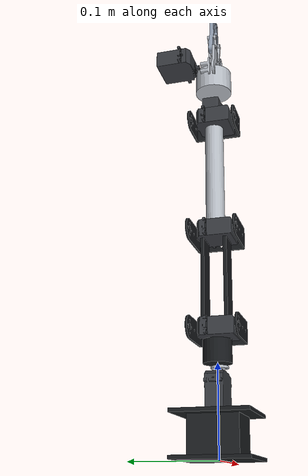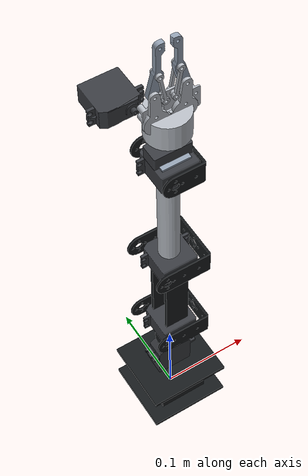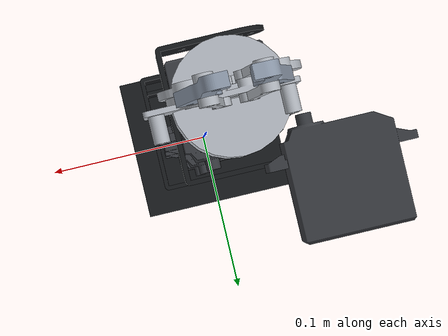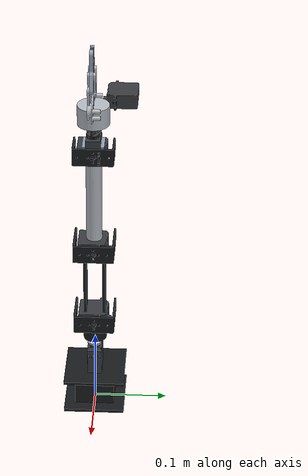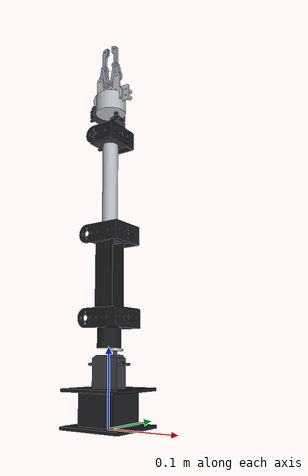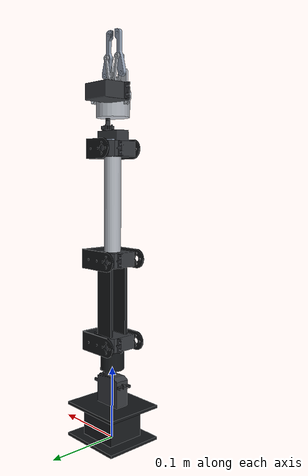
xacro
<?xml version="1.0" encoding="UTF-8"?>
<robot name="k3b_arm" xmlns:xacro="http://www.ros.org/wiki/xacro">

  <!-- 本体：link / joint / 网格，和纯模型版完全一致 -->
  <xacro:include filename="k3b_arm.urdf.xacro"/>

  <!-- 控制接口：只声明 6 个主动关节 -->
  <xacro:include filename="ros2_control/k3b_arm.ros2_control.xacro"/>

</robot>

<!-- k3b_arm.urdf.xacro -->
<robot name="k3b_arm" xmlns:xacro="http://www.ros.org/wiki/xacro">

  <!-- ================= 杆长（按图估算，需实测替换） ================= -->
  <xacro:property name="base_height"   value="0.095"/>
  <xacro:property name="base_radius"   value="0.05"/>
  <xacro:property name="base_plate_x"  value="0.090"/>   <!-- 规格图 9cm -->
  <xacro:property name="base_plate_y"  value="0.084"/>   <!-- 规格图 8.4cm -->
  <xacro:property name="base_box_h"    value="${base_height - s20f_h - 0.008}"/>
  <xacro:property name="upper_arm_len" value="0.105"/>   <!-- 实测 S3→S4 轴心 10.5cm -->
  <xacro:property name="forearm_len"   value="0.145"/>   <!-- 实测 S4→S5 轴心 14.5cm -->
  <xacro:property name="wrist_len"     value="0.040"/>

  <!-- ================= 关节限位（弧度，实测表） ================= -->
  <xacro:property name="lim_base"   value="1.5708"/>
  <xacro:property name="lim_should" value="1.7628"/>
  <xacro:property name="lim_elbow"  value="2.3562"/>
  <xacro:property name="lim_wpitch" value="2.2340"/>
  <xacro:property name="joint_speed" value="1.5"/>

  <xacro:property name="claw_x" value="0.00275"/>   <!-- claw 网格对称面 -->
  <xacro:property name="claw_z" value="0.02770"/>   <!-- claw 网格 -> gripper_base -->

  <!-- G 齿轮轴心 -->
  <xacro:property name="gear_u" value="0.01345"/>
  <xacro:property name="gear_z" value="-0.00230"/>
  <xacro:property name="gear_v" value="0.03000"/>
  <!-- R 平行连杆根部销 -->
  <xacro:property name="bar_u"  value="0.00505"/>
  <xacro:property name="bar_z"  value="0.01840"/>
  <xacro:property name="bar_v"  value="0.00930"/>
  <!-- A 指根销（相对齿轮轴） -->
  <xacro:property name="pa_u"   value="0.00220"/>
  <xacro:property name="pa_z"   value="0.02990"/>
  <xacro:property name="pa_v"   value="0.00010"/>

  <!-- S1：输出轴落在齿轮轴心上，机身向 +Y 外挂 -->
  <xacro:property name="s1_x" value="-0.02348"/>
  <xacro:property name="s1_y" value="0.012"/>

  <!-- 行程：齿轮臂 0~80°。80° 是机构锁死角（内距最大 47.1mm，再大就回缩），
       所以 URDF 允许走满全行程，S1 的实际脉宽子区间由实机标定后再收窄。 -->
  <xacro:property name="lim_gear" value="1.39626"/>
  <!-- 从动件 mimic 系数：按 55° 端点匹配（URDF mimic 只能线性，中段为近似） -->
  <xacro:property name="mimic_finger" value="-1.10533"/>
  <xacro:property name="mimic_bar"    value="0.96141"/>
  <!-- 各杆碰撞盒（粗） -->
  <xacro:property name="finger_half_w" value="0.00845"/>
  <xacro:property name="finger_len" value="0.0593"/>

  <!-- ================= 网格 ================= -->
  <xacro:property name="mesh_dir" value="package://k3b_arm_urdf/meshes/"/>

  <!-- S20F：输出轴 +Z、轴心在原点，机身向 -Z 展 45.92mm -->
  <xacro:property name="s20f_h"    value="0.04592"/>
  <xacro:property name="s20f_xoff" value="0.010"/>
  <!-- DS3120（速度舵机）同上 -->
  <xacro:property name="ds_h"      value="0.0455"/>
  <xacro:property name="ds_xoff"   value="0.010"/>

  <!-- 俯仰关节：把舵机 +Z 轴转到 +Y（机身在 -Y 侧展开） -->
  <xacro:property name="servo_y_rpy" value="-${pi/2} 0 0"/>
  <!-- 舵机沿 +Y 前移，让机身落进 U 支架两片侧板之间 -->
  <xacro:property name="s20f_yoff" value="0.024"/>
  <!-- U 支架：绕 Z 转 90°，两片侧板落到 Y=±28，夹住舵机安装法兰 -->
  <xacro:property name="u_rpy" value="0 0 ${pi/2}"/>

  <!-- ================= 材质 ================= -->
  <material name="base_mat"> <color rgba="0.10 0.11 0.12 1.0"/> </material>
  <material name="bracket_mat"> <color rgba="0.09 0.10 0.11 1.0"/> </material>
  <material name="link_mat"> <color rgba="0.58 0.63 0.70 1.0"/> </material>
  <material name="servo_mat"><color rgba="0.22 0.23 0.25 1.0"/> </material>
  <material name="metal_mat"><color rgba="0.72 0.74 0.77 1.0"/> </material>
  <material name="grip_mat"> <color rgba="0.20 0.65 0.55 1.0"/> </material>

  <!-- ================= 底座 ================= -->
  <link name="base_link">
    <!-- 底板（规格图：9 × 8.4cm 方板，实机为上下双板夹方箱） -->
    <visual>
      <geometry><box size="${base_plate_x} ${base_plate_y} 0.004"/></geometry>
      <origin xyz="0 0 0.002" rpy="0 0 0"/>
      <material name="bracket_mat"/>
    </visual>
    <!-- 中间方箱 -->
    <visual>
      <geometry><box size="0.055 0.055 ${base_box_h}"/></geometry>
      <origin xyz="0 0 ${0.004 + base_box_h/2}" rpy="0 0 0"/>
      <material name="base_mat"/>
    </visual>
    <!-- 顶板 -->
    <visual>
      <geometry><box size="${base_plate_x} ${base_plate_y} 0.004"/></geometry>
      <origin xyz="0 0 ${0.004 + base_box_h + 0.002}" rpy="0 0 0"/>
      <material name="bracket_mat"/>
    </visual>
    <!-- S2：驱动 base_yaw，轴朝上 -->
    <visual>
      <geometry><mesh filename="${mesh_dir}s20f.stl"/></geometry>
      <origin xyz="${s20f_xoff} 0 ${base_height}" rpy="0 0 0"/>
      <material name="servo_mat"/>
    </visual>
    <collision>
      <geometry><cylinder radius="${base_radius}" length="${base_height - s20f_h}"/></geometry>
      <origin xyz="0 0 ${(base_height - s20f_h)/2}" rpy="0 0 0"/>
    </collision>
    <inertial>
      <mass value="1.0"/>
      <inertia ixx="0.01" ixy="0.0" ixz="0.0" iyy="0.01" iyz="0.0" izz="0.01"/>
    </inertial>
  </link>

  <!-- ================= J1 底座偏航（S2） ================= -->
  <link name="base_yaw_link">
    <!-- 25T 舵盘压在 S2 输出轴端，当转台 -->
    <visual>
      <geometry><mesh filename="${mesh_dir}part_horn25t.stl"/></geometry>
      <origin xyz="${s20f_xoff} 0 0.0025" rpy="0 0 0"/>
      <material name="metal_mat"/>
    </visual>
    <!-- 短柱：把 U 支架垫到肩关节高度 -->
    <visual>
      <geometry><cylinder radius="0.016" length="0.026"/></geometry>
      <origin xyz="0 0 0.017" rpy="0 0 0"/>
      <material name="bracket_mat"/>
    </visual>
    <!-- 单轴长U支架：夹住 S3 -->
    <visual>
      <geometry><mesh filename="${mesh_dir}part_u_long.stl"/></geometry>
      <origin xyz="0 0 0.042" rpy="${u_rpy}"/>
      <material name="bracket_mat"/>
    </visual>
    <!-- S3：驱动 shoulder_pitch -->
    <visual>
      <geometry><mesh filename="${mesh_dir}s20f.stl"/></geometry>
      <origin xyz="${s20f_xoff} ${s20f_yoff} 0.042" rpy="${servo_y_rpy}"/>
      <material name="servo_mat"/>
    </visual>
    <collision>
      <geometry><cylinder radius="0.032" length="0.05"/></geometry>
      <origin xyz="0 0 0.025" rpy="0 0 0"/>
    </collision>
    <inertial>
      <mass value="0.3"/>
      <inertia ixx="0.001" ixy="0.0" ixz="0.0" iyy="0.001" iyz="0.0" izz="0.001"/>
    </inertial>
  </link>
  <joint name="base_yaw" type="revolute">
    <parent link="base_link"/>
    <child link="base_yaw_link"/>
    <origin xyz="0 0 ${base_height}" rpy="0 0 0"/>
    <axis xyz="0 0 1"/>
    <limit lower="-${lim_base}" upper="${lim_base}" effort="20.0" velocity="${joint_speed}"/>
    <dynamics damping="0.3" friction="0.15"/>
  </joint>

  <!-- ================= J2 肩俯仰（S3） ================= -->
  <link name="upper_arm_link">
    <!-- 大臂：两片平行黑色侧板（实拍结构） -->
    <visual>
      <geometry><box size="0.026 0.004 ${upper_arm_len}"/></geometry>
      <origin xyz="0 0.013 ${upper_arm_len/2}" rpy="0 0 0"/>
      <material name="bracket_mat"/>
    </visual>
    <visual>
      <geometry><box size="0.026 0.004 ${upper_arm_len}"/></geometry>
      <origin xyz="0 -0.013 ${upper_arm_len/2}" rpy="0 0 0"/>
      <material name="bracket_mat"/>
    </visual>
    <!-- 单轴长U支架：夹住 S4 -->
    <visual>
      <geometry><mesh filename="${mesh_dir}part_u_long.stl"/></geometry>
      <origin xyz="0 0 ${upper_arm_len}" rpy="${u_rpy}"/>
      <material name="bracket_mat"/>
    </visual>
    <!-- S4：驱动 elbow_pitch -->
    <visual>
      <geometry><mesh filename="${mesh_dir}s20f.stl"/></geometry>
      <origin xyz="${s20f_xoff} ${s20f_yoff} ${upper_arm_len}" rpy="${servo_y_rpy}"/>
      <material name="servo_mat"/>
    </visual>
    <collision>
      <geometry><box size="0.030 0.030 ${upper_arm_len}"/></geometry>
      <origin xyz="0 0 ${upper_arm_len/2}" rpy="0 0 0"/>
    </collision>
    <inertial>
      <mass value="0.6"/>
      <inertia ixx="0.002" ixy="0.0" ixz="0.0" iyy="0.002" iyz="0.0" izz="0.002"/>
    </inertial>
  </link>
  <joint name="shoulder_pitch" type="revolute">
    <parent link="base_yaw_link"/>
    <child link="upper_arm_link"/>
    <origin xyz="0 0 0.05" rpy="0 0 0"/>
    <axis xyz="0 1 0"/>
    <limit lower="-${lim_should}" upper="${lim_should}" effort="20.0" velocity="${joint_speed}"/>
    <dynamics damping="0.3" friction="0.15"/>
  </joint>

  <!-- ================= J3 肘俯仰（S4） ================= -->
  <link name="forearm_link">
    <!-- 前臂：银色铝管 -->
    <visual>
      <geometry><cylinder radius="0.011" length="${forearm_len}"/></geometry>
      <origin xyz="0 0 ${forearm_len/2}" rpy="0 0 0"/>
      <material name="metal_mat"/>
    </visual>
    <!-- 单轴短U支架：夹住 S5 -->
    <visual>
      <geometry><mesh filename="${mesh_dir}part_u_short.stl"/></geometry>
      <origin xyz="0 0 ${forearm_len}" rpy="${u_rpy}"/>
      <material name="bracket_mat"/>
    </visual>
    <!-- S5（PM15S，暂以 S20F 代替）：驱动 wrist_pitch -->
    <visual>
      <geometry><mesh filename="${mesh_dir}s20f.stl"/></geometry>
      <origin xyz="${s20f_xoff} ${s20f_yoff} ${forearm_len}" rpy="${servo_y_rpy}"/>
      <material name="servo_mat"/>
    </visual>
    <collision>
      <geometry><cylinder radius="0.011" length="${forearm_len}"/></geometry>
      <origin xyz="0 0 ${forearm_len/2}" rpy="0 0 0"/>
    </collision>
    <inertial>
      <mass value="0.5"/>
      <inertia ixx="0.002" ixy="0.0" ixz="0.0" iyy="0.002" iyz="0.0" izz="0.002"/>
    </inertial>
  </link>
  <joint name="elbow_pitch" type="revolute">
    <parent link="upper_arm_link"/>
    <child link="forearm_link"/>
    <origin xyz="0 0 ${upper_arm_len}" rpy="0 0 0"/>
    <axis xyz="0 1 0"/>
    <limit lower="-${lim_elbow}" upper="${lim_elbow}" effort="15.0" velocity="${joint_speed}"/>
    <dynamics damping="0.25" friction="0.12"/>
  </joint>

  <!-- ================= J4 腕俯仰（S5） ================= -->
  <link name="wrist_link">
    <!-- 腕部接盘（DS3120 机身本身占满这段，这里只做一块连接板） -->
    <visual>
      <geometry><box size="0.030 0.030 0.012"/></geometry>
      <origin xyz="0 0 0.006" rpy="0 0 0"/>
      <material name="link_mat"/>
    </visual>
    <!-- 速度舵机 DS3120：驱动 wrist_roll -->
    <visual>
      <geometry><mesh filename="${mesh_dir}ds3120.stl"/></geometry>
      <origin xyz="${ds_xoff} 0 ${wrist_len}" rpy="0 0 0"/>
      <material name="servo_mat"/>
    </visual>
    <collision>
      <geometry><box size="0.030 0.030 0.012"/></geometry>
      <origin xyz="0 0 0.006" rpy="0 0 0"/>
    </collision>
    <inertial>
      <mass value="0.2"/>
      <inertia ixx="0.0005" ixy="0.0" ixz="0.0" iyy="0.0005" iyz="0.0" izz="0.0005"/>
    </inertial>
  </link>
  <joint name="wrist_pitch" type="revolute">
    <parent link="forearm_link"/>
    <child link="wrist_link"/>
    <origin xyz="0 0 ${forearm_len}" rpy="0 0 0"/>
    <axis xyz="0 1 0"/>
    <limit lower="-${lim_wpitch}" upper="${lim_wpitch}" effort="10.0" velocity="${joint_speed}"/>
    <dynamics damping="0.2" friction="0.12"/>
  </joint>

  <!-- ================= J5 腕滚转（速度舵机，continuous） ================= -->
  <link name="wrist_roll_link">
    <visual>
      <geometry><cylinder radius="0.022" length="0.028"/></geometry>
      <origin xyz="0 0 0.014" rpy="0 0 0"/>
      <material name="metal_mat"/>
    </visual>
    <collision>
      <geometry><cylinder radius="0.024" length="0.028"/></geometry>
      <origin xyz="0 0 0.014" rpy="0 0 0"/>
    </collision>
    <inertial>
      <mass value="0.15"/>
      <inertia ixx="0.0003" ixy="0.0" ixz="0.0" iyy="0.0003" iyz="0.0" izz="0.0003"/>
    </inertial>
  </link>
  <joint name="wrist_roll" type="continuous">
    <parent link="wrist_link"/>
    <child link="wrist_roll_link"/>
    <origin xyz="0 0 ${wrist_len}" rpy="0 0 0"/>
    <axis xyz="0 0 1"/>
    <limit effort="10.0" velocity="6.0"/>
    <dynamics damping="0.1" friction="0.05"/>
  </joint>

  <!-- ================= 夹爪机身（固定，含 S1） ================= -->
  <link name="gripper_base_link">
    <!-- S1：输出轴对准齿轮轴心，机身从爪体 +Y 面外挂 -->
    <visual>
      <geometry><mesh filename="${mesh_dir}s20f.stl"/></geometry>
      <origin xyz="${s1_x} ${s1_y} ${gear_z}" rpy="${pi/2} 0 0"/>
      <material name="servo_mat"/>
    </visual>
    <!-- 机械爪壳体：背板 + 舵机支架 + 垫块（齿轮扇形板与连杆已拆成独立杆件） -->
    <visual>
      <geometry><mesh filename="${mesh_dir}claw_body.stl"/></geometry>
      <origin xyz="${claw_x} 0 ${claw_z}" rpy="0 ${pi} 0"/>
      <material name="metal_mat"/>
    </visual>
    <collision>
      <geometry><box size="0.060 0.024 0.050"/></geometry>
      <origin xyz="0 0 0.025" rpy="0 0 0"/>
    </collision>
    <inertial>
      <mass value="0.12"/>
      <inertia ixx="0.0001" ixy="0.0" ixz="0.0" iyy="0.0001" iyz="0.0" izz="0.0001"/>
    </inertial>
  </link>
  <joint name="gripper_base_joint" type="fixed">
    <parent link="wrist_roll_link"/>
    <child link="gripper_base_link"/>
    <origin xyz="0 0 0.028" rpy="0 0 0"/>
  </joint>

  <!-- 末端工具坐标系：两爪尖正中间 -->
  <link name="tool0"/>
  <joint name="tool0_joint" type="fixed">
    <parent link="gripper_base_link"/>
    <child link="tool0"/>
    <origin xyz="0 0 0.082" rpy="0 0 0"/>
  </joint>

  <!-- ================= 左齿轮扇形板（S1 侧 / 啮合侧） ================= -->
  <!-- 输入杆：S1 直接驱动。正向 = 张开（逆时针） -->
  <link name="finger_left_gear_link">
    <visual>
      <geometry><mesh filename="${mesh_dir}claw_gear_left.stl"/></geometry>
      <origin xyz="-0.01070 0 ${gear_v}" rpy="0 ${pi} 0"/>
      <material name="metal_mat"/>
    </visual>
    <collision>
      <geometry><box size="0.028 0.006 0.050"/></geometry>
      <origin xyz="0 0 0.015" rpy="0 0 0"/>
    </collision>
    <inertial>
      <mass value="0.03"/>
      <inertia ixx="0.00001" ixy="0.0" ixz="0.0" iyy="0.00001" iyz="0.0" izz="0.00001"/>
    </inertial>
  </link>
  <joint name="finger_left_gear_joint" type="revolute">
    <parent link="gripper_base_link"/>
    <child link="finger_left_gear_link"/>
    <origin xyz="0.01345 0 ${gear_z}" rpy="0 0 0"/>
    <axis xyz="0 1 0"/>
    <limit lower="0" upper="${lim_gear}" effort="12.0" velocity="2.0"/>
    <dynamics damping="0.5" friction="0.1"/>
  </joint>

  <!-- ================= 左指片（连杆 coupler） ================= -->
  <link name="finger_left_link">
    <visual>
      <geometry><mesh filename="${mesh_dir}claw_finger_left.stl"/></geometry>
      <origin xyz="-0.01290 0 ${pa_v}" rpy="0 ${pi} 0"/>
      <material name="link_mat"/>
    </visual>
    <collision>
      <geometry><box size="${finger_half_w*2} 0.005 ${finger_len}"/></geometry>
      <origin xyz="-0.0035 -0.0015 0.0247" rpy="0 0 0"/>
    </collision>
    <inertial>
      <mass value="0.03"/>
      <inertia ixx="0.00002" ixy="0.0" ixz="0.0" iyy="0.00002" iyz="0.0" izz="0.00001"/>
    </inertial>
  </link>
  <joint name="finger_left_joint" type="revolute">
    <parent link="finger_left_gear_link"/>
    <child link="finger_left_link"/>
    <origin xyz="0.00220 0 ${pa_z}" rpy="0 0 0"/>
    <axis xyz="0 1 0"/>
    <limit lower="${mimic_finger*lim_gear}" upper="0" effort="8.0" velocity="1.5"/>
    <mimic joint="finger_left_gear_joint" multiplier="${mimic_finger}" offset="0"/>
    <dynamics damping="1.0" friction="0.2"/>
  </joint>

  <!-- ================= 左平行连杆（rocker2） ================= -->
  <link name="finger_left_bar_link">
    <visual>
      <geometry><mesh filename="${mesh_dir}claw_bar_left.stl"/></geometry>
      <origin xyz="-0.00230 0 ${bar_v}" rpy="0 ${pi} 0"/>
      <material name="metal_mat"/>
    </visual>
    <collision>
      <geometry><box size="0.010 0.011 0.030"/></geometry>
      <origin xyz="-0.0026 0 -0.0052" rpy="0 0 0"/>
    </collision>
    <inertial>
      <mass value="0.015"/>
      <inertia ixx="0.000005" ixy="0.0" ixz="0.0" iyy="0.000005" iyz="0.0" izz="0.000005"/>
    </inertial>
  </link>
  <joint name="finger_left_bar_joint" type="revolute">
    <parent link="gripper_base_link"/>
    <child link="finger_left_bar_link"/>
    <origin xyz="0.00505 0 ${bar_z}" rpy="0 0 0"/>
    <axis xyz="0 1 0"/>
    <limit lower="0" upper="${mimic_bar*lim_gear}" effort="8.0" velocity="1.5"/>
    <mimic joint="finger_left_gear_joint" multiplier="${mimic_bar}" offset="0"/>
    <dynamics damping="1.0" friction="0.2"/>
  </joint>

  <!-- ================= 右齿轮扇形板（S1 侧 / 啮合侧） ================= -->
  <!-- 与左齿轮啮合，转向相反 -> axis 取 -Y，mimic 系数 +1 即为镜像 -->
  <link name="finger_right_gear_link">
    <visual>
      <geometry><mesh filename="${mesh_dir}claw_gear_right.stl"/></geometry>
      <origin xyz="0.01620 0 ${gear_v}" rpy="0 ${pi} 0"/>
      <material name="metal_mat"/>
    </visual>
    <collision>
      <geometry><box size="0.028 0.006 0.050"/></geometry>
      <origin xyz="0 0 0.015" rpy="0 0 0"/>
    </collision>
    <inertial>
      <mass value="0.03"/>
      <inertia ixx="0.00001" ixy="0.0" ixz="0.0" iyy="0.00001" iyz="0.0" izz="0.00001"/>
    </inertial>
  </link>
  <joint name="finger_right_gear_joint" type="revolute">
    <parent link="gripper_base_link"/>
    <child link="finger_right_gear_link"/>
    <origin xyz="-0.01345 0 ${gear_z}" rpy="0 0 0"/>
    <axis xyz="0 -1 0"/>
    <limit lower="0" upper="${lim_gear}" effort="12.0" velocity="2.0"/>
    <mimic joint="finger_left_gear_joint" multiplier="1" offset="0"/>
    <dynamics damping="0.5" friction="0.1"/>
  </joint>

  <!-- ================= 右指片（连杆 coupler） ================= -->
  <link name="finger_right_link">
    <visual>
      <geometry><mesh filename="${mesh_dir}claw_finger_right.stl"/></geometry>
      <origin xyz="0.01840 0 ${pa_v}" rpy="0 ${pi} 0"/>
      <material name="link_mat"/>
    </visual>
    <collision>
      <geometry><box size="${finger_half_w*2} 0.005 ${finger_len}"/></geometry>
      <origin xyz="-0.0035 -0.0015 0.0247" rpy="0 0 0"/>
    </collision>
    <inertial>
      <mass value="0.03"/>
      <inertia ixx="0.00002" ixy="0.0" ixz="0.0" iyy="0.00002" iyz="0.0" izz="0.00001"/>
    </inertial>
  </link>
  <joint name="finger_right_joint" type="revolute">
    <parent link="finger_right_gear_link"/>
    <child link="finger_right_link"/>
    <origin xyz="-0.00220 0 ${pa_z}" rpy="0 0 0"/>
    <axis xyz="0 -1 0"/>
    <limit lower="${mimic_finger*lim_gear}" upper="0" effort="8.0" velocity="1.5"/>
    <mimic joint="finger_left_gear_joint" multiplier="${mimic_finger}" offset="0"/>
    <dynamics damping="1.0" friction="0.2"/>
  </joint>

  <!-- ================= 右平行连杆（rocker2） ================= -->
  <link name="finger_right_bar_link">
    <visual>
      <geometry><mesh filename="${mesh_dir}claw_bar_right.stl"/></geometry>
      <origin xyz="0.00780 0 ${bar_v}" rpy="0 ${pi} 0"/>
      <material name="metal_mat"/>
    </visual>
    <collision>
      <geometry><box size="0.010 0.011 0.030"/></geometry>
      <origin xyz="-0.0026 0 -0.0052" rpy="0 0 0"/>
    </collision>
    <inertial>
      <mass value="0.015"/>
      <inertia ixx="0.000005" ixy="0.0" ixz="0.0" iyy="0.000005" iyz="0.0" izz="0.000005"/>
    </inertial>
  </link>
  <joint name="finger_right_bar_joint" type="revolute">
    <parent link="gripper_base_link"/>
    <child link="finger_right_bar_link"/>
    <origin xyz="-0.00505 0 ${bar_z}" rpy="0 0 0"/>
    <axis xyz="0 -1 0"/>
    <limit lower="0" upper="${mimic_bar*lim_gear}" effort="8.0" velocity="1.5"/>
    <mimic joint="finger_left_gear_joint" multiplier="${mimic_bar}" offset="0"/>
    <dynamics damping="1.0" friction="0.2"/>
  </joint>

  <!-- ================= 世界坐标系 ================= -->
  <link name="world"/>
  <joint name="world_joint" type="fixed">
    <parent link="world"/>
    <child link="base_link"/>
    <origin xyz="0 0 0" rpy="0 0 0"/>
  </joint>

</robot>
